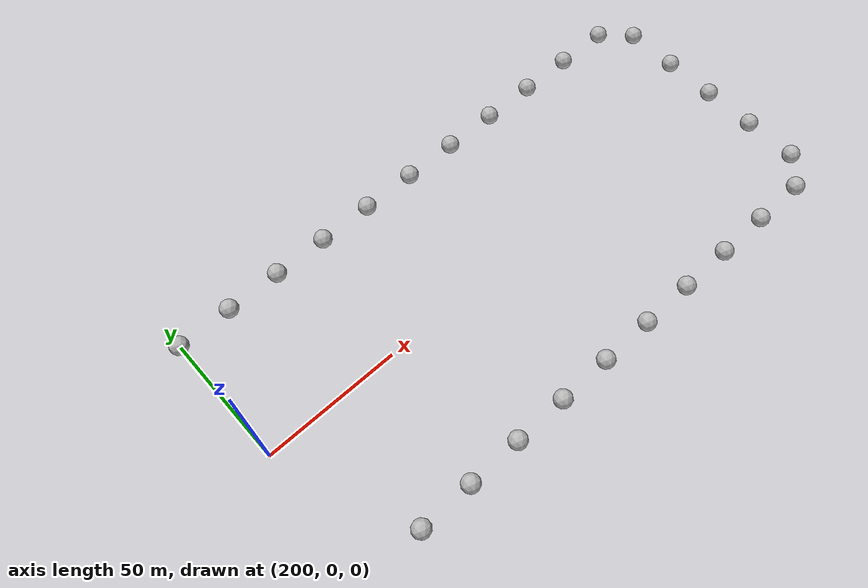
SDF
<sdf version="1.6">
 <world name="default">
  <model name="blocker_120">
   <pose>200
    50.0
    0
    0
    0
    0</pose>
   <static>true</static>
   <link name="link">
    <pose>0 0 0 1.5707963267948966 0 0</pose>
    <collision name="collision">
     <geometry>
      <mesh><scale>1.2 1.2 1.2</scale><uri>model://cave_tile_blocker/meshes/cave_tile_blocker.obj</uri></mesh>
     </geometry>
    </collision>
    <visual name="visual">
     <geometry>
      <mesh><scale>1.2 1.2 1.2</scale><uri>model://cave_tile_blocker/meshes/cave_tile_blocker.obj</uri></mesh>
     </geometry>
    </visual>
   </link>
  </model>
  <model name="blocker_121">
   <pose>220
    -50.0
    0
    0
    0
    0</pose>
   <static>true</static>
   <link name="link">
    <pose>0 0 0 1.5707963267948966 0 0</pose>
    <collision name="collision">
     <geometry>
      <mesh><scale>1.2 1.2 1.2</scale><uri>model://cave_tile_blocker/meshes/cave_tile_blocker.obj</uri></mesh>
     </geometry>
    </collision>
    <visual name="visual">
     <geometry>
      <mesh><scale>1.2 1.2 1.2</scale><uri>model://cave_tile_blocker/meshes/cave_tile_blocker.obj</uri></mesh>
     </geometry>
    </visual>
   </link>
  </model>
  <model name="blocker_122">
   <pose>220
    50.0
    0
    0
    0
    0</pose>
   <static>true</static>
   <link name="link">
    <pose>0 0 0 1.5707963267948966 0 0</pose>
    <collision name="collision">
     <geometry>
      <mesh><scale>1.2 1.2 1.2</scale><uri>model://cave_tile_blocker/meshes/cave_tile_blocker.obj</uri></mesh>
     </geometry>
    </collision>
    <visual name="visual">
     <geometry>
      <mesh><scale>1.2 1.2 1.2</scale><uri>model://cave_tile_blocker/meshes/cave_tile_blocker.obj</uri></mesh>
     </geometry>
    </visual>
   </link>
  </model>
  <model name="blocker_123">
   <pose>240
    -50.0
    0
    0
    0
    0</pose>
   <static>true</static>
   <link name="link">
    <pose>0 0 0 1.5707963267948966 0 0</pose>
    <collision name="collision">
     <geometry>
      <mesh><scale>1.2 1.2 1.2</scale><uri>model://cave_tile_blocker/meshes/cave_tile_blocker.obj</uri></mesh>
     </geometry>
    </collision>
    <visual name="visual">
     <geometry>
      <mesh><scale>1.2 1.2 1.2</scale><uri>model://cave_tile_blocker/meshes/cave_tile_blocker.obj</uri></mesh>
     </geometry>
    </visual>
   </link>
  </model>
  <model name="blocker_124">
   <pose>240
    50.0
    0
    0
    0
    0</pose>
   <static>true</static>
   <link name="link">
    <pose>0 0 0 1.5707963267948966 0 0</pose>
    <collision name="collision">
     <geometry>
      <mesh><scale>1.2 1.2 1.2</scale><uri>model://cave_tile_blocker/meshes/cave_tile_blocker.obj</uri></mesh>
     </geometry>
    </collision>
    <visual name="visual">
     <geometry>
      <mesh><scale>1.2 1.2 1.2</scale><uri>model://cave_tile_blocker/meshes/cave_tile_blocker.obj</uri></mesh>
     </geometry>
    </visual>
   </link>
  </model>
  <model name="blocker_125">
   <pose>260
    -50.0
    0
    0
    0
    0</pose>
   <static>true</static>
   <link name="link">
    <pose>0 0 0 1.5707963267948966 0 0</pose>
    <collision name="collision">
     <geometry>
      <mesh><scale>1.2 1.2 1.2</scale><uri>model://cave_tile_blocker/meshes/cave_tile_blocker.obj</uri></mesh>
     </geometry>
    </collision>
    <visual name="visual">
     <geometry>
      <mesh><scale>1.2 1.2 1.2</scale><uri>model://cave_tile_blocker/meshes/cave_tile_blocker.obj</uri></mesh>
     </geometry>
    </visual>
   </link>
  </model>
  <model name="blocker_126">
   <pose>260
    50.0
    0
    0
    0
    0</pose>
   <static>true</static>
   <link name="link">
    <pose>0 0 0 1.5707963267948966 0 0</pose>
    <collision name="collision">
     <geometry>
      <mesh><scale>1.2 1.2 1.2</scale><uri>model://cave_tile_blocker/meshes/cave_tile_blocker.obj</uri></mesh>
     </geometry>
    </collision>
    <visual name="visual">
     <geometry>
      <mesh><scale>1.2 1.2 1.2</scale><uri>model://cave_tile_blocker/meshes/cave_tile_blocker.obj</uri></mesh>
     </geometry>
    </visual>
   </link>
  </model>
  <model name="blocker_127">
   <pose>280
    -50.0
    0
    0
    0
    0</pose>
   <static>true</static>
   <link name="link">
    <pose>0 0 0 1.5707963267948966 0 0</pose>
    <collision name="collision">
     <geometry>
      <mesh><scale>1.2 1.2 1.2</scale><uri>model://cave_tile_blocker/meshes/cave_tile_blocker.obj</uri></mesh>
     </geometry>
    </collision>
    <visual name="visual">
     <geometry>
      <mesh><scale>1.2 1.2 1.2</scale><uri>model://cave_tile_blocker/meshes/cave_tile_blocker.obj</uri></mesh>
     </geometry>
    </visual>
   </link>
  </model>
  <model name="blocker_128">
   <pose>280
    50.0
    0
    0
    0
    0</pose>
   <static>true</static>
   <link name="link">
    <pose>0 0 0 1.5707963267948966 0 0</pose>
    <collision name="collision">
     <geometry>
      <mesh><scale>1.2 1.2 1.2</scale><uri>model://cave_tile_blocker/meshes/cave_tile_blocker.obj</uri></mesh>
     </geometry>
    </collision>
    <visual name="visual">
     <geometry>
      <mesh><scale>1.2 1.2 1.2</scale><uri>model://cave_tile_blocker/meshes/cave_tile_blocker.obj</uri></mesh>
     </geometry>
    </visual>
   </link>
  </model>
  <model name="blocker_129">
   <pose>300
    -50.0
    0
    0
    0
    0</pose>
   <static>true</static>
   <link name="link">
    <pose>0 0 0 1.5707963267948966 0 0</pose>
    <collision name="collision">
     <geometry>
      <mesh><scale>1.2 1.2 1.2</scale><uri>model://cave_tile_blocker/meshes/cave_tile_blocker.obj</uri></mesh>
     </geometry>
    </collision>
    <visual name="visual">
     <geometry>
      <mesh><scale>1.2 1.2 1.2</scale><uri>model://cave_tile_blocker/meshes/cave_tile_blocker.obj</uri></mesh>
     </geometry>
    </visual>
   </link>
  </model>
  <model name="blocker_130">
   <pose>300
    50.0
    0
    0
    0
    0</pose>
   <static>true</static>
   <link name="link">
    <pose>0 0 0 1.5707963267948966 0 0</pose>
    <collision name="collision">
     <geometry>
      <mesh><scale>1.2 1.2 1.2</scale><uri>model://cave_tile_blocker/meshes/cave_tile_blocker.obj</uri></mesh>
     </geometry>
    </collision>
    <visual name="visual">
     <geometry>
      <mesh><scale>1.2 1.2 1.2</scale><uri>model://cave_tile_blocker/meshes/cave_tile_blocker.obj</uri></mesh>
     </geometry>
    </visual>
   </link>
  </model>
  <model name="blocker_131">
   <pose>320
    -50.0
    0
    0
    0
    0</pose>
   <static>true</static>
   <link name="link">
    <pose>0 0 0 1.5707963267948966 0 0</pose>
    <collision name="collision">
     <geometry>
      <mesh><scale>1.2 1.2 1.2</scale><uri>model://cave_tile_blocker/meshes/cave_tile_blocker.obj</uri></mesh>
     </geometry>
    </collision>
    <visual name="visual">
     <geometry>
      <mesh><scale>1.2 1.2 1.2</scale><uri>model://cave_tile_blocker/meshes/cave_tile_blocker.obj</uri></mesh>
     </geometry>
    </visual>
   </link>
  </model>
  <model name="blocker_132">
   <pose>320
    50.0
    0
    0
    0
    0</pose>
   <static>true</static>
   <link name="link">
    <pose>0 0 0 1.5707963267948966 0 0</pose>
    <collision name="collision">
     <geometry>
      <mesh><scale>1.2 1.2 1.2</scale><uri>model://cave_tile_blocker/meshes/cave_tile_blocker.obj</uri></mesh>
     </geometry>
    </collision>
    <visual name="visual">
     <geometry>
      <mesh><scale>1.2 1.2 1.2</scale><uri>model://cave_tile_blocker/meshes/cave_tile_blocker.obj</uri></mesh>
     </geometry>
    </visual>
   </link>
  </model>
  <model name="blocker_133">
   <pose>340
    -50.0
    0
    0
    0
    0</pose>
   <static>true</static>
   <link name="link">
    <pose>0 0 0 1.5707963267948966 0 0</pose>
    <collision name="collision">
     <geometry>
      <mesh><scale>1.2 1.2 1.2</scale><uri>model://cave_tile_blocker/meshes/cave_tile_blocker.obj</uri></mesh>
     </geometry>
    </collision>
    <visual name="visual">
     <geometry>
      <mesh><scale>1.2 1.2 1.2</scale><uri>model://cave_tile_blocker/meshes/cave_tile_blocker.obj</uri></mesh>
     </geometry>
    </visual>
   </link>
  </model>
  <model name="blocker_134">
   <pose>340
    50.0
    0
    0
    0
    0</pose>
   <static>true</static>
   <link name="link">
    <pose>0 0 0 1.5707963267948966 0 0</pose>
    <collision name="collision">
     <geometry>
      <mesh><scale>1.2 1.2 1.2</scale><uri>model://cave_tile_blocker/meshes/cave_tile_blocker.obj</uri></mesh>
     </geometry>
    </collision>
    <visual name="visual">
     <geometry>
      <mesh><scale>1.2 1.2 1.2</scale><uri>model://cave_tile_blocker/meshes/cave_tile_blocker.obj</uri></mesh>
     </geometry>
    </visual>
   </link>
  </model>
  <model name="blocker_135">
   <pose>360
    -50.0
    0
    0
    0
    0</pose>
   <static>true</static>
   <link name="link">
    <pose>0 0 0 1.5707963267948966 0 0</pose>
    <collision name="collision">
     <geometry>
      <mesh><scale>1.2 1.2 1.2</scale><uri>model://cave_tile_blocker/meshes/cave_tile_blocker.obj</uri></mesh>
     </geometry>
    </collision>
    <visual name="visual">
     <geometry>
      <mesh><scale>1.2 1.2 1.2</scale><uri>model://cave_tile_blocker/meshes/cave_tile_blocker.obj</uri></mesh>
     </geometry>
    </visual>
   </link>
  </model>
  <model name="blocker_136">
   <pose>360
    50.0
    0
    0
    0
    0</pose>
   <static>true</static>
   <link name="link">
    <pose>0 0 0 1.5707963267948966 0 0</pose>
    <collision name="collision">
     <geometry>
      <mesh><scale>1.2 1.2 1.2</scale><uri>model://cave_tile_blocker/meshes/cave_tile_blocker.obj</uri></mesh>
     </geometry>
    </collision>
    <visual name="visual">
     <geometry>
      <mesh><scale>1.2 1.2 1.2</scale><uri>model://cave_tile_blocker/meshes/cave_tile_blocker.obj</uri></mesh>
     </geometry>
    </visual>
   </link>
  </model>
  <model name="blocker_137">
   <pose>380
    -50.0
    0
    0
    0
    0</pose>
   <static>true</static>
   <link name="link">
    <pose>0 0 0 1.5707963267948966 0 0</pose>
    <collision name="collision">
     <geometry>
      <mesh><scale>1.2 1.2 1.2</scale><uri>model://cave_tile_blocker/meshes/cave_tile_blocker.obj</uri></mesh>
     </geometry>
    </collision>
    <visual name="visual">
     <geometry>
      <mesh><scale>1.2 1.2 1.2</scale><uri>model://cave_tile_blocker/meshes/cave_tile_blocker.obj</uri></mesh>
     </geometry>
    </visual>
   </link>
  </model>
  <model name="blocker_138">
   <pose>380
    50.0
    0
    0
    0
    0</pose>
   <static>true</static>
   <link name="link">
    <pose>0 0 0 1.5707963267948966 0 0</pose>
    <collision name="collision">
     <geometry>
      <mesh><scale>1.2 1.2 1.2</scale><uri>model://cave_tile_blocker/meshes/cave_tile_blocker.obj</uri></mesh>
     </geometry>
    </collision>
    <visual name="visual">
     <geometry>
      <mesh><scale>1.2 1.2 1.2</scale><uri>model://cave_tile_blocker/meshes/cave_tile_blocker.obj</uri></mesh>
     </geometry>
    </visual>
   </link>
  </model>
  <model name="blocker_139">
   <pose>400
    -50.0
    0
    0
    0
    0</pose>
   <static>true</static>
   <link name="link">
    <pose>0 0 0 1.5707963267948966 0 0</pose>
    <collision name="collision">
     <geometry>
      <mesh><scale>1.2 1.2 1.2</scale><uri>model://cave_tile_blocker/meshes/cave_tile_blocker.obj</uri></mesh>
     </geometry>
    </collision>
    <visual name="visual">
     <geometry>
      <mesh><scale>1.2 1.2 1.2</scale><uri>model://cave_tile_blocker/meshes/cave_tile_blocker.obj</uri></mesh>
     </geometry>
    </visual>
   </link>
  </model>
  <model name="blocker_140">
   <pose>400
    50.0
    0
    0
    0
    0</pose>
   <static>true</static>
   <link name="link">
    <pose>0 0 0 1.5707963267948966 0 0</pose>
    <collision name="collision">
     <geometry>
      <mesh><scale>1.2 1.2 1.2</scale><uri>model://cave_tile_blocker/meshes/cave_tile_blocker.obj</uri></mesh>
     </geometry>
    </collision>
    <visual name="visual">
     <geometry>
      <mesh><scale>1.2 1.2 1.2</scale><uri>model://cave_tile_blocker/meshes/cave_tile_blocker.obj</uri></mesh>
     </geometry>
    </visual>
   </link>
  </model>
  <model name="blocker_142">
   <pose>410.0
    -40
    0
    0
    0
    0</pose>
   <static>true</static>
   <link name="link">
    <pose>0 0 0 1.5707963267948966 0 0</pose>
    <collision name="collision">
     <geometry>
      <mesh><scale>1.2 1.2 1.2</scale><uri>model://cave_tile_blocker/meshes/cave_tile_blocker.obj</uri></mesh>
     </geometry>
    </collision>
    <visual name="visual">
     <geometry>
      <mesh><scale>1.2 1.2 1.2</scale><uri>model://cave_tile_blocker/meshes/cave_tile_blocker.obj</uri></mesh>
     </geometry>
    </visual>
   </link>
  </model>
  <model name="blocker_144">
   <pose>410.0
    -20
    0
    0
    0
    0</pose>
   <static>true</static>
   <link name="link">
    <pose>0 0 0 1.5707963267948966 0 0</pose>
    <collision name="collision">
     <geometry>
      <mesh><scale>1.2 1.2 1.2</scale><uri>model://cave_tile_blocker/meshes/cave_tile_blocker.obj</uri></mesh>
     </geometry>
    </collision>
    <visual name="visual">
     <geometry>
      <mesh><scale>1.2 1.2 1.2</scale><uri>model://cave_tile_blocker/meshes/cave_tile_blocker.obj</uri></mesh>
     </geometry>
    </visual>
   </link>
  </model>
  <model name="blocker_145">
   <pose>410.0
    0
    0
    0
    0
    0</pose>
   <static>true</static>
   <link name="link">
    <pose>0 0 0 1.5707963267948966 0 0</pose>
    <collision name="collision">
     <geometry>
      <mesh><scale>1.2 1.2 1.2</scale><uri>model://cave_tile_blocker/meshes/cave_tile_blocker.obj</uri></mesh>
     </geometry>
    </collision>
    <visual name="visual">
     <geometry>
      <mesh><scale>1.2 1.2 1.2</scale><uri>model://cave_tile_blocker/meshes/cave_tile_blocker.obj</uri></mesh>
     </geometry>
    </visual>
   </link>
  </model>
  <model name="blocker_147">
   <pose>410.0
    20
    0
    0
    0
    0</pose>
   <static>true</static>
   <link name="link">
    <pose>0 0 0 1.5707963267948966 0 0</pose>
    <collision name="collision">
     <geometry>
      <mesh><scale>1.2 1.2 1.2</scale><uri>model://cave_tile_blocker/meshes/cave_tile_blocker.obj</uri></mesh>
     </geometry>
    </collision>
    <visual name="visual">
     <geometry>
      <mesh><scale>1.2 1.2 1.2</scale><uri>model://cave_tile_blocker/meshes/cave_tile_blocker.obj</uri></mesh>
     </geometry>
    </visual>
   </link>
  </model>
  <model name="blocker_149">
   <pose>410.0
    40
    0
    0
    0
    0</pose>
   <static>true</static>
   <link name="link">
    <pose>0 0 0 1.5707963267948966 0 0</pose>
    <collision name="collision">
     <geometry>
      <mesh><scale>1.2 1.2 1.2</scale><uri>model://cave_tile_blocker/meshes/cave_tile_blocker.obj</uri></mesh>
     </geometry>
    </collision>
    <visual name="visual">
     <geometry>
      <mesh><scale>1.2 1.2 1.2</scale><uri>model://cave_tile_blocker/meshes/cave_tile_blocker.obj</uri></mesh>
     </geometry>
    </visual>
   </link>
  </model>
 </world>
</sdf>
